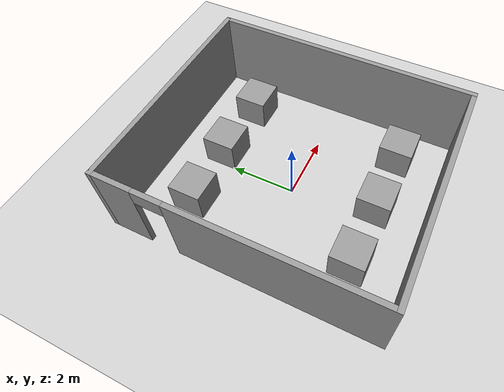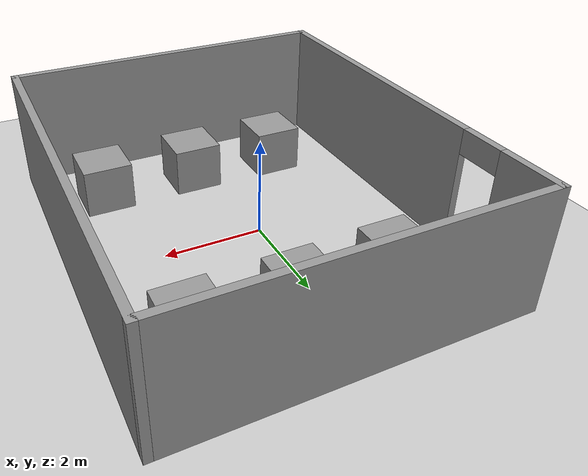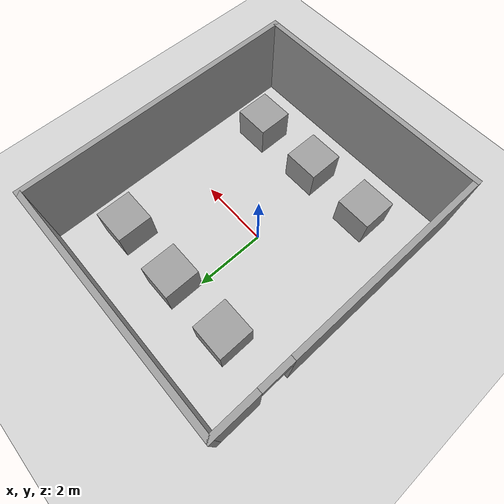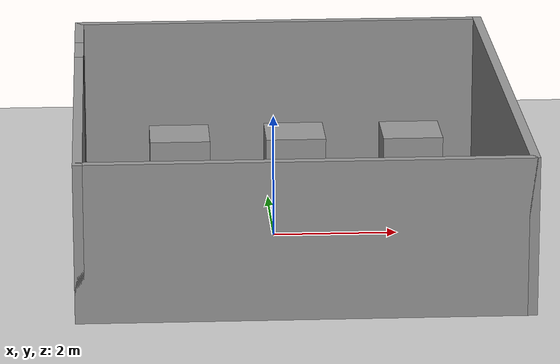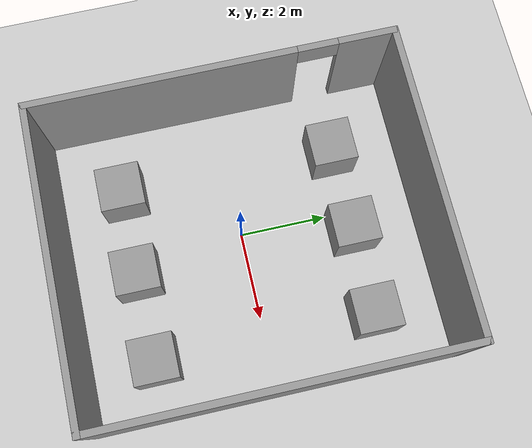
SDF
<sdf version="1.6">
 <world name="default">
  <light name="sun" type="directional">
   <pose>0 0 10 0 -0 0</pose>
   <diffuse>0.8 0.8 0.8 1</diffuse>
   <specular>0.2 0.2 0.2 1</specular>
   <attenuation>
    <range>1000</range>
    <constant>0.9</constant>
    <linear>0.01</linear>
    <quadratic>0.001</quadratic>
   </attenuation>
   <direction>-0.5 0.1 -0.9</direction>
  </light>
  <model name="ground_plane">
   <static>1</static>
   <link name="link">
    <collision name="collision">
     <geometry><plane><normal>0 0 1</normal><size>100 100</size></plane></geometry>
     <surface><friction><ode><mu>100</mu><mu2>50</mu2></ode></friction></surface>
    </collision>
    <visual name="visual">
     <cast_shadows>0</cast_shadows>
     <geometry><plane><normal>0 0 1</normal><size>100 100</size></plane></geometry>
     <material>
      <script><uri>file://media/materials/scripts/gazebo.material</uri><name>Gazebo/Grey</name></script>
     </material>
    </visual>
   </link>
  </model>
  <gravity>0 0 -9.8</gravity>
  <magnetic_field>6e-06 2.3e-05 -4.2e-05</magnetic_field>
  <atmosphere type="adiabatic"/>
  <physics name="default_physics" default="0" type="ode">
   <max_step_size>0.001</max_step_size>
   <real_time_factor>1</real_time_factor>
   <real_time_update_rate>1000</real_time_update_rate>
  </physics>
  <scene><ambient>0.4 0.4 0.4 1</ambient><background>0.7 0.7 0.7 1</background><shadows>1</shadows></scene>
  <spherical_coordinates>
   <surface_model>EARTH_WGS84</surface_model>
   <latitude_deg>0</latitude_deg>
   <longitude_deg>0</longitude_deg>
   <elevation>0</elevation>
   <heading_deg>0</heading_deg>
  </spherical_coordinates>
  <model name="map1walls">
   <pose>0.300094 0.055284 0 0 -0 0</pose>
   <link name="Wall_10">
    <collision name="Wall_10_Collision">
     <geometry><box><size>7 0.15 2.5</size></box></geometry>
     <pose>0 0 1.25 0 -0 0</pose>
    </collision>
    <visual name="Wall_10_Visual">
     <pose>0 0 1.25 0 -0 0</pose>
     <geometry><box><size>7 0.15 2.5</size></box></geometry>
     <material>
      <script><uri>file://media/materials/scripts/gazebo.material</uri><name>Gazebo/Grey</name></script>
      <ambient>1 1 1 1</ambient>
     </material>
     <meta><layer>0</layer></meta>
    </visual>
    <pose>0 -4.05 0 0 -0 0</pose>
   </link>
   <link name="Wall_6">
    <collision name="Wall_6_Collision">
     <geometry><box><size>8.25 0.15 2.5</size></box></geometry>
     <pose>0 0 1.25 0 -0 0</pose>
    </collision>
    <visual name="Wall_6_Visual">
     <pose>0 0 1.25 0 -0 0</pose>
     <geometry><box><size>8.25 0.15 2.5</size></box></geometry>
     <material>
      <script><uri>file://media/materials/scripts/gazebo.material</uri><name>Gazebo/Grey</name></script>
      <ambient>1 1 1 1</ambient>
     </material>
     <meta><layer>0</layer></meta>
    </visual>
    <pose>3.425 0 0 0 -0 1.5708</pose>
   </link>
   <link name="Wall_7">
    <collision name="Wall_7_Collision">
     <geometry><box><size>7 0.15 2.5</size></box></geometry>
     <pose>0 0 1.25 0 -0 0</pose>
    </collision>
    <visual name="Wall_7_Visual">
     <pose>0 0 1.25 0 -0 0</pose>
     <geometry><box><size>7 0.15 2.5</size></box></geometry>
     <material>
      <script><uri>file://media/materials/scripts/gazebo.material</uri><name>Gazebo/Grey</name></script>
      <ambient>1 1 1 1</ambient>
     </material>
     <meta><layer>0</layer></meta>
    </visual>
    <pose>0 4.05 0 0 -0 3.14159</pose>
   </link>
   <link name="Wall_8">
    <pose>-3.425 0 0 0 0 -1.5708</pose>
    <visual name="Wall_8_Visual_0">
     <pose>-3.45907 0 1.25 0 -0 0</pose>
     <geometry><box><size>1.33186 0.15 2.5</size></box></geometry>
     <material>
      <script><uri>file://media/materials/scripts/gazebo.material</uri><name>Gazebo/Grey</name></script>
      <ambient>1 1 1 1</ambient>
     </material>
     <meta><layer>0</layer></meta>
    </visual>
    <collision name="Wall_8_Collision_0">
     <geometry><box><size>1.33186 0.15 2.5</size></box></geometry>
     <pose>-3.45907 0 1.25 0 -0 0</pose>
    </collision>
    <visual name="Wall_8_Visual_1">
     <pose>1.11593 0 1.25 0 -0 0</pose>
     <geometry><box><size>6.01814 0.15 2.5</size></box></geometry>
     <material>
      <script><uri>file://media/materials/scripts/gazebo.material</uri><name>Gazebo/Grey</name></script>
      <ambient>1 1 1 1</ambient>
     </material>
     <meta><layer>0</layer></meta>
    </visual>
    <collision name="Wall_8_Collision_1">
     <geometry><box><size>6.01814 0.15 2.5</size></box></geometry>
     <pose>1.11593 0 1.25 0 -0 0</pose>
    </collision>
    <visual name="Wall_8_Visual_2">
     <pose>-2.34314 0 2.25 0 -0 0</pose>
     <geometry><box><size>0.9 0.15 0.5</size></box></geometry>
     <material>
      <script><uri>file://media/materials/scripts/gazebo.material</uri><name>Gazebo/Grey</name></script>
      <ambient>1 1 1 1</ambient>
     </material>
     <meta><layer>0</layer></meta>
    </visual>
    <collision name="Wall_8_Collision_2">
     <geometry><box><size>0.9 0.15 0.5</size></box></geometry>
     <pose>-2.34314 0 2.25 0 -0 0</pose>
    </collision>
   </link>
   <static>1</static>
  </model>
  <model name="unit_box">
   <pose>-1.46589 2.44719 0.499995 -1e-05 0 0</pose>
   <link name="link">
    <inertial>
     <mass>1</mass>
     <inertia>
      <ixx>0.166667</ixx>
      <ixy>0</ixy>
      <ixz>0</ixz>
      <iyy>0.166667</iyy>
      <iyz>0</iyz>
      <izz>0.166667</izz>
     </inertia>
    </inertial>
    <collision name="collision"><geometry><box><size>1 1 1</size></box></geometry></collision>
    <visual name="visual">
     <geometry><box><size>1 1 1</size></box></geometry>
     <material>
      <script><name>Gazebo/Grey</name><uri>file://media/materials/scripts/gazebo.material</uri></script>
     </material>
    </visual>
   </link>
  </model>
  <model name="unit_box_0">
   <pose>0.478933 2.49189 0.499995 0 1e-05 0</pose>
   <link name="link">
    <inertial>
     <mass>1</mass>
     <inertia>
      <ixx>0.166667</ixx>
      <ixy>0</ixy>
      <ixz>0</ixz>
      <iyy>0.166667</iyy>
      <iyz>0</iyz>
      <izz>0.166667</izz>
     </inertia>
    </inertial>
    <collision name="collision"><geometry><box><size>1 1 1</size></box></geometry></collision>
    <visual name="visual">
     <geometry><box><size>1 1 1</size></box></geometry>
     <material>
      <script><name>Gazebo/Grey</name><uri>file://media/materials/scripts/gazebo.material</uri></script>
     </material>
    </visual>
   </link>
  </model>
  <model name="unit_box_1">
   <pose>2.4461 2.46955 0.499995 -1e-05 0 0</pose>
   <link name="link">
    <inertial>
     <mass>1</mass>
     <inertia>
      <ixx>0.166667</ixx>
      <ixy>0</ixy>
      <ixz>0</ixz>
      <iyy>0.166667</iyy>
      <iyz>0</iyz>
      <izz>0.166667</izz>
     </inertia>
    </inertial>
    <collision name="collision"><geometry><box><size>1 1 1</size></box></geometry></collision>
    <visual name="visual">
     <geometry><box><size>1 1 1</size></box></geometry>
     <material>
      <script><name>Gazebo/Grey</name><uri>file://media/materials/scripts/gazebo.material</uri></script>
     </material>
    </visual>
   </link>
  </model>
  <model name="unit_box_2">
   <pose>-1.46589 -2.47074 0.499995 0 1e-05 0</pose>
   <link name="link">
    <inertial>
     <mass>1</mass>
     <inertia>
      <ixx>0.166667</ixx>
      <ixy>0</ixy>
      <ixz>0</ixz>
      <iyy>0.166667</iyy>
      <iyz>0</iyz>
      <izz>0.166667</izz>
     </inertia>
    </inertial>
    <collision name="collision"><geometry><box><size>1 1 1</size></box></geometry></collision>
    <visual name="visual">
     <geometry><box><size>1 1 1</size></box></geometry>
     <material>
      <script><name>Gazebo/Grey</name><uri>file://media/materials/scripts/gazebo.material</uri></script>
     </material>
    </visual>
   </link>
  </model>
  <model name="unit_box_3">
   <pose>0.478928 -2.49309 0.499995 -1e-05 0 0</pose>
   <link name="link">
    <inertial>
     <mass>1</mass>
     <inertia>
      <ixx>0.166667</ixx>
      <ixy>0</ixy>
      <ixz>0</ixz>
      <iyy>0.166667</iyy>
      <iyz>0</iyz>
      <izz>0.166667</izz>
     </inertia>
    </inertial>
    <collision name="collision"><geometry><box><size>1 1 1</size></box></geometry></collision>
    <visual name="visual">
     <geometry><box><size>1 1 1</size></box></geometry>
     <material>
      <script><name>Gazebo/Grey</name><uri>file://media/materials/scripts/gazebo.material</uri></script>
     </material>
    </visual>
   </link>
  </model>
  <model name="unit_box_4">
   <pose>2.46846 -2.47074 0.5 0 -0 0</pose>
   <link name="link">
    <inertial>
     <mass>1</mass>
     <inertia>
      <ixx>0.166667</ixx>
      <ixy>0</ixy>
      <ixz>0</ixz>
      <iyy>0.166667</iyy>
      <iyz>0</iyz>
      <izz>0.166667</izz>
     </inertia>
    </inertial>
    <collision name="collision"><geometry><box><size>1 1 1</size></box></geometry></collision>
    <visual name="visual">
     <geometry><box><size>1 1 1</size></box></geometry>
     <material>
      <script><name>Gazebo/Grey</name><uri>file://media/materials/scripts/gazebo.material</uri></script>
     </material>
    </visual>
   </link>
  </model>
 </world>
</sdf>
